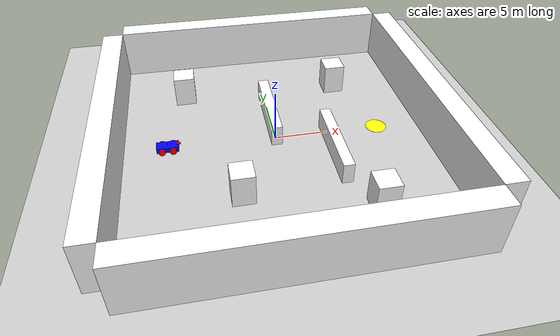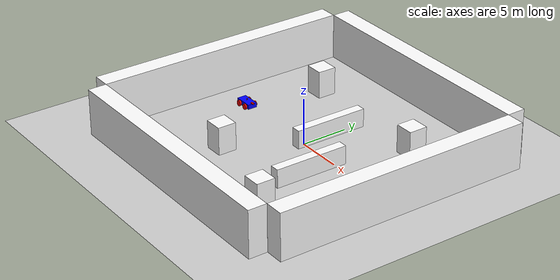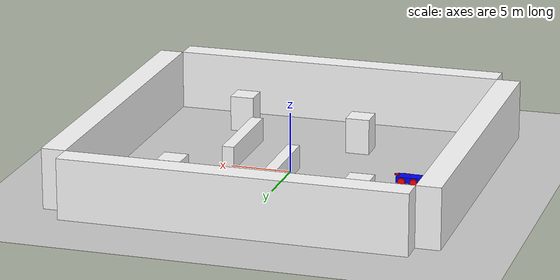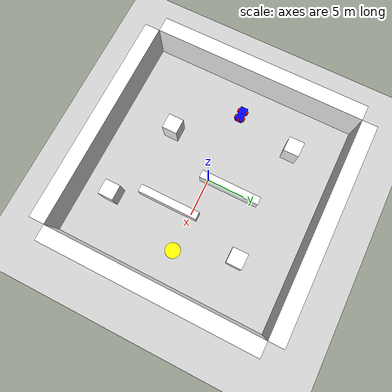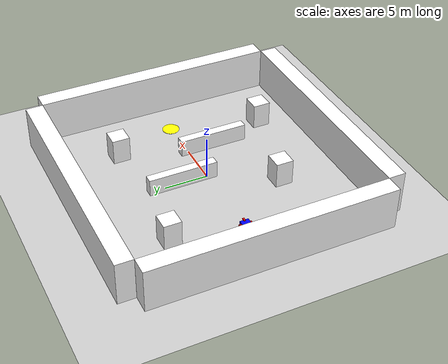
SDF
<?xml version="1.0"?>
<sdf version="1.9">
    <world name="my_car_world">
        <physics name="1ms" type="ignored">
            <max_step_size>0.004</max_step_size>
            <real_time_factor>1.0</real_time_factor>
        </physics>
       <plugin
            filename="ignition-gazebo-sensors-system"
            name="ignition::gazebo::v6::systems::Sensors">
        </plugin>
        <plugin
            filename="ignition-gazebo-physics-system"
            name="ignition::gazebo::v6::systems::Physics">
        </plugin>
        <plugin
            filename="ignition-gazebo-user-commands-system"
            name="ignition::gazebo::v6::systems::UserCommands">
        </plugin>
        <plugin
            filename="ignition-gazebo-scene-broadcaster-system"
            name="ignition::gazebo::v6::systems::SceneBroadcaster">
        </plugin>
        <plugin
            filename="ignition-gazebo-imu-system"
            name="ignition::gazebo::v6::systems::Imu">
        </plugin>
        <!-- Contact System 추가 (충돌 감지 필수) -->
        <plugin
            filename="ignition-gazebo-contact-system"
            name="ignition::gazebo::v6::systems::Contact">
        </plugin>
        <!-- 보상함수에서 차와 실제 목표지점간 거리가 얼마나 가까운지를 사용해야함. 기존에 car.sdf에 이 코드를 구현했었는데, 해당 방식은 car기준으로 좌표들을 보내줬었음 -->
        <!--하지만 내가 필요한 건 world기준 좌표이기 때문에 여기 다시 작성, child_frame_id를 car로 했을떄 정상적으로 출력되는 걸 확인.-->
        <plugin
            filename="ignition-gazebo-pose-publisher-system"
            name="ignition::gazebo::v6::systems::PosePublisher">
            <publish_link_pose>false</publish_link_pose>
            <publish_sensor_pose>false</publish_sensor_pose>
            <publish_collision_pose>false</publish_collision_pose>
            <publish_visual_pose>false</publish_visual_pose>
            <publish_nested_models>true</publish_nested_models>
            <publish_model_pose>true</publish_model_pose>
            <use_pose_vector_msg>true</use_pose_vector_msg>
            <static_publisher>true</static_publisher>
            <static_update_frequency>10</static_update_frequency>
        </plugin>
        <!-- LIDAR 센서를 위해 필요-->

        <light type="directional" name="sun">
            <cast_shadows>true</cast_shadows>
            <pose>0 0 10 0 0 0</pose>
            <diffuse>0.8 0.8 0.8 1</diffuse>
            <specular>0.2 0.2 0.2 1</specular>
            <attenuation>
                <range>1000</range>
                <constant>0.9</constant>
                <linear>0.01</linear>
                <quadratic>0.001</quadratic>
            </attenuation>
            <direction>-0.5 0.1 -0.9</direction>
        </light>

        <include>
            <uri>model://ground_plane</uri>
            <name>ground_plane</name>
            <pose>0 0 0 0 0 0</pose>
        </include>
        <include>
            <uri>model://car</uri>
            <name>car</name>
            <pose>-10 0 0 0 0 0</pose>
        </include>

        <!--car가
        map 밖으로 나가지 못하게 벽을 설치할거임-->
        <include>
            <uri>model://map_wall</uri>
            <name>north_wall</name>
            <pose>15 0 2.5 0 0 0</pose>
        </include>
        <include>
            <uri>model://map_wall</uri>
            <name>south_wall</name>
            <pose>-15 0 2.5 0 0 0</pose>
        </include>
        <include>
            <uri>model://map_wall</uri>
            <name>east_wall</name>
            <pose>0 15 2.5 0 0 1.5707</pose>
        </include>
        <include>
            <uri>model://map_wall</uri>
            <name>west_wall</name>
            <pose>0 -15 2.5 0 0 1.5707</pose>
        </include>

        <!-- 경로를 방해할 장애물들 설치.-->
        <!--정육면체형
        장애물 배치-->

        <include>
            <uri>model://box</uri>
            <name>box1</name>
            <pose>7.5 7.5 1.5 0 0 0</pose>
        </include>
        <include>
            <uri>model://box</uri>
            <name>box2</name>
            <pose>7 -10 1.5 0 0 0</pose>
        </include>

        <include>
            <uri>model://box</uri>
            <name>box4</name>
            <pose>-4 -7 1.5 0 0 0</pose>
        </include>
        <include>
            <uri>model://box</uri>
            <name>box5</name>
            <pose>-8 8 1.5 0 0 0</pose>
        </include>

        <!-- 장애물 벽 설치-->
        <include>
            <uri>model://wall</uri>
            <name>wall1</name>
            <pose>5 -3 1 0 0 0</pose>
        </include>
        <include>
            <uri>model://wall</uri>
            <name>wall2</name>
            <pose>0 3 1 0 0 0</pose>
        </include>

        <!-- 목표 지점 goal 설정-->
        <include>
            <uri>model://goal</uri>
            <name>goal</name>
            <pose>10 0 0 0 0 0</pose>
        </include>
    </world>
</sdf>

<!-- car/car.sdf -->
<sdf version="1.9">
    <model name='car' canonical_link='chassis::chassis_link'>
        <include>
            <uri>model://chassis</uri>
            <name>chassis</name>
            <pose>0 0 0.4 0 0 0</pose>
        </include>
        <pose>0 0 0 0 0 0</pose>

        <frame name="lidar_frame" attached_to='chassis::chassis_link'>
            <pose>1.05 0 0.5 0 0 0</pose>
        </frame>

        <include>
            <uri>model://tire</uri>
            <name>left_front_wheel</name>
            <pose>0.5 0.6 0.3 -1.5707 0 0</pose>
        </include>
        <include>
            <uri>model://tire</uri>
            <name>right_front_wheel</name>
            <pose>0.5 -0.6 0.3 -1.5707 0 0</pose>
        </include>
        <include>
            <uri>model://tire</uri>
            <name>left_rear_wheel</name>
            <pose>-0.5 0.6 0.3 -1.5707 0 0</pose>
        </include>
        <include>
            <uri>model://tire</uri>
            <name>right_rear_wheel</name>
            <pose>-0.5 -0.6 0.3 -1.5707 0 0</pose>
        </include>

        <include>
            <uri>model://knuckle</uri>
            <name>left_steering_knuckle</name>
            <pose>0.5 0.6 0.3 0 0 0</pose>
        </include>

        <joint name='left_steering_joint' type='revolute'>
            <parent>chassis::chassis_link</parent>
            <child>left_steering_knuckle::knuckle_link</child>
            <axis>
                <xyz>0 0 1</xyz>
                <limit>
                    <lower>-0.6</lower>
                    <upper>0.6</upper>
                    <effort>1000000</effort>
                </limit>
            </axis>
        </joint>

        <joint name='left_front_wheel_joint' type='revolute'>
            <pose relative_to='left_front_wheel' />
            <parent>left_steering_knuckle::knuckle_link</parent>
            <child>left_front_wheel::tire_link</child>
            <axis>
                <xyz expressed_in='__model__'>0 1 0</xyz>
                <limit>
                    <lower>-1.79769e+308</lower>
                    <upper>1.79769e+308</upper>
                </limit>
            </axis>
        </joint>

        <include>
            <uri>model://knuckle</uri>
            <name>right_steering_knuckle</name>
            <pose>0.5 -0.6 0.3 0 0 0</pose>
        </include>

        <joint name='right_steering_joint' type='revolute'>
            <parent>chassis::chassis_link</parent>
            <child>right_steering_knuckle::knuckle_link</child>
            <axis>
                <xyz>0 0 1</xyz>
                <limit>
                    <lower>-0.6</lower>
                    <upper>0.6</upper>
                    <effort>1000000</effort>
                </limit>
            </axis>
        </joint>

        <joint name='right_front_wheel_joint' type='revolute'>
            <pose relative_to='right_front_wheel' />
            <parent>right_steering_knuckle::knuckle_link</parent>
            <child>right_front_wheel::tire_link</child>
            <axis>
                <xyz expressed_in='__model__'>0 1 0</xyz>
                <limit>
                    <lower>-1.79769e+308</lower>
                    <upper>1.79769e+308</upper>
                </limit>
            </axis>
        </joint>

        <joint name='left_rear_wheel_joint' type='revolute'>
            <pose relative_to='left_rear_wheel' />
            <parent>chassis::chassis_link</parent>
            <child>left_rear_wheel::tire_link</child>
            <axis>
                <xyz expressed_in='__model__'>0 1 0</xyz>
                <limit>
                    <lower>-1.79769e+308</lower>
                    <upper>1.79769e+308</upper>
                </limit>
            </axis>
        </joint>

        <joint name='right_rear_wheel_joint' type='revolute'>
            <pose relative_to='right_rear_wheel' />
            <parent>chassis::chassis_link</parent>
            <child>right_rear_wheel::tire_link</child>
            <axis>
                <xyz expressed_in='__model__'>0 1 0</xyz>
                <limit>
                    <lower>-1.79769e+308</lower>
                    <upper>1.79769e+308</upper>
                </limit>
            </axis>
        </joint>
        <!--공식적으로 제공되는 플러그인을 찾아서 구현하였음-->
        <plugin
            filename="ignition-gazebo-ackermann-steering-system"
            name="ignition::gazebo::v6::systems::AckermannSteering">
            <topic>/cmd_vel</topic>
            <left_steering_joint>left_steering_joint</left_steering_joint>
            <right_steering_joint>right_steering_joint</right_steering_joint>
            <left_joint>left_rear_wheel_joint</left_joint>
            <right_joint>right_rear_wheel_joint</right_joint>
            <wheel_base>1.0</wheel_base>
            <wheel_separation>1.2</wheel_separation>
            <wheel_radius>0.3</wheel_radius>
            <odom_topic>/model/car/odometry</odom_topic>
            <tf_topic>/model/car/tf</tf_topic>
            <frame_id>odom</frame_id>
            <child_frame_id>chassis::chassis_link</child_frame_id>
            <odom_publish_frequency>30</odom_publish_frequency>
        </plugin>
        <!--충돌 방지를 위해서 contact sensor를 추가하였음.-->
        <plugin filename="libignition-gazebo-contact-system.so"
                name="ignition::gazebo::systems::Contact">
        </plugin>
        <!--자동차를 키보드로 움직여보기 위한 코드. 튜토리얼 중 추가하였음.-->
        <plugin filename="ignition-gazebo-triggered-publisher-system"
            name="ignition::gazebo::v6::systems::TriggeredPublisher">
            <input type="ignition.msgs.Int32" topic="/keyboard/keypress">
                <match field="data">16777235</match>
            </input>
            <output type="ignition.msgs.Twist" topic="/cmd_vel">
                linear: {x: 0.5}, angular: {z: 0.0}
            </output>
        </plugin>

        <plugin filename="ignition-gazebo-triggered-publisher-system"
            name="ignition::gazebo::v6::systems::TriggeredPublisher">
            <input type="ignition.msgs.Int32" topic="/keyboard/keypress">
                <match field="data">16777237</match>
            </input>
            <output type="ignition.msgs.Twist" topic="/cmd_vel">
                linear: {x: -0.5}, angular: {z: 0.0}
            </output>
        </plugin>

        <plugin filename="ignition-gazebo-triggered-publisher-system"
            name="ignition::gazebo::v6::systems::TriggeredPublisher">
            <input type="ignition.msgs.Int32" topic="/keyboard/keypress">
                <match field="data">16777234</match>
            </input>
            <output type="ignition.msgs.Twist" topic="/cmd_vel">
                linear: {x: 0.2}, angular: {z: 0.5}
            </output>
        </plugin>

        <plugin filename="ignition-gazebo-triggered-publisher-system"
            name="ignition::gazebo::v6::systems::TriggeredPublisher">
            <input type="ignition.msgs.Int32" topic="/keyboard/keypress">
                <match field="data">16777236</match>
            </input>
            <output type="ignition.msgs.Twist" topic="/cmd_vel">
                linear: {x: 0.2}, angular: {z: -0.5}
            </output>
        </plugin>
        <!--ROS한테 내부 센서들이 자동차의 어디에 있는 지 알려주는 플러그인이라고 함. 이게 있어야 ROS에서 점을 찍을 수 있다고함.-->
        <plugin
            filename="ignition-gazebo-pose-publisher-system"
            name="ignition::gazebo::v6::systems::PosePublisher">
            <publish_link_pose>true</publish_link_pose>
            <publish_sensor_pose>true</publish_sensor_pose>
            <publish_collision_pose>false</publish_collision_pose>
            <publish_visual_pose>false</publish_visual_pose>
            <publish_nested_models>true</publish_nested_models>
            <publish_model_pose>true</publish_model_pose>
            <use_pose_vector_msg>true</use_pose_vector_msg>
            <static_publisher>true</static_publisher>
            <static_update_frequency>10</static_update_frequency>
        </plugin>
    </model>
</sdf>

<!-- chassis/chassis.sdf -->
<sdf version="1.9" xmlns:ignition="http://sdformat.org/schemas/ignition">
    <model name='chassis_model'>
        <link name='chassis_link'>

            <!-- 차체에 실질적인 IMU 센서 부착-->
            <sensor name="imu_sensor" type="imu">
                <always_on>1</always_on>
                <update_rate>10</update_rate>
                <visualize>true</visualize>
                <topic>imu</topic>
            </sensor>
            <!-- 차체에 실질적인 LIDAR 센서 부착-->
            <!-- mac m2 환경에서 호환성 문제 지속 발생-->
            <!-- lidar_frame의 위치 (car.sdf에서 1.05 0 0.5로 정의됨)를 chassis_link 기준으로 직접 설정 -->

            <!-- 라이다 센서와 차체 사이의 빈공간을 메꾸기 위한 링크 추가-->
            <visual name='lidar_empty_space_visual'>
                <pose>0 0 0.3 0 0 0</pose> <!--빈 공간의 좌표-->
                <geometry>
                    <cylinder> <!--같은 원통 모양으로 하되, 센서보다 반지름 조금 작게-->
                        <radius>0.03</radius>
                        <length>0.1</length>
                    </cylinder>
                </geometry>
                <material>
                    <ambient>0.2 0.2 0.2 1</ambient>
                    <diffuse>0.2 0.2 0.2 1</diffuse>
                </material>
            </visual>

            <collision name='lidar_empty_space_collision'>
                <pose>0 0 0.3 0 0 0</pose> <!--빈 공간의 좌표, 위와 동일-->
                <geometry>
                    <cylinder>
                        <radius>0.03</radius>
                        <length>0.1</length>
                    </cylinder>
                </geometry>
            </collision>

            <!-- 라이다 센서 위치를 시각적으로 표시하기 위한 visual 추가 -->
            <visual name='lidar_visual'>
                <pose>0 0 0.4 0 0 0</pose>
                <geometry>
                    <cylinder>
                        <radius>0.05</radius>
                        <length>0.1</length>
                    </cylinder>
                </geometry>
                <material>
                    <ambient>1.0 0.0 0.0 1</ambient>
                    <diffuse>1.0 0.0 0.0 1</diffuse>
                    <specular>1.0 0.0 0.0 1</specular>
                </material>
            </visual>
            <!--현실 세계를 생각하면 라이다 센서를 360도 돌릴려면 안에 있는 모터가 360도 돌아가면서 센서를 쏘는거라서 각 방향별로 시간차가 발생한다고함.-->
            <!--단순히 라이다 센서 태그 하나 넣고 각도를 360도 돌아라고 하면 현실 세계랑 조금 안맞는 것 같은 느낌이 있어서 상하좌우 각 방면에 카메라를 하나씩 두는 것도 고민을 했었는데 -->
            <!--일단은 완벽한 현실 재현보다는 시뮬레이션 환경에서 잘 돌아가는 강화학습 에이전트를 만드는게 우선이라고 생각해서 이렇게 진행했음.-->
            <!--update_rate를 5로 지정해둬서 0.2초에 한번씩 시뮬레이션 세상에서 멈추고 뽑아주는 거라는데 일단은 넘어감-->
            <sensor name='gpu_lidar' type='gpu_lidar'>
                <pose>0 0 0.4 0 0 0</pose>
                <topic>lidar</topic>
                <update_rate>10</update_rate>
                <ignition:frame_id>lidar_frame</ignition:frame_id> <!--ROS에서 쓰기 편하게 짧은 이름으로 해주는 것이라고 함-->
                <ray>
                    <scan>
                        <horizontal>
                            <samples>360</samples>
                            <resolution>1</resolution>
                            <min_angle>-3.141592</min_angle>
                            <max_angle>3.141592</max_angle>
                        </horizontal>
                        <!-- 수직 방향으로도 스캔이 가능하지만 이번 과제에서는 거리를 측정해서 센서값 기반으로 장애물을 회피하는거지, 드론처럼 z축 이동하는 것이 아니기 때문에 최소화로 작성하고 사용은 안 할 것임.-->
                        <vertical>
                            <samples>1</samples>
                            <resolution>0.01</resolution>
                            <min_angle>0</min_angle>
                            <max_angle>0</max_angle>
                        </vertical>
                    </scan>
                    <range>
                        <min>1.5</min>
                        <max>10.0</max>
                        <resolution>0.01</resolution>
                    </range>
                </ray>
                <always_on>1</always_on>
                <visualize>true</visualize>
            </sensor>
            <!--SSH 터널링으로 넘어오기에 데이터가 크다는 오류가 계속 나와서 320*240을 160*120으로 줄이고 주기도 30->10으로 낮춤-->
            <!--카메라의 x좌표는 처음에 복잡하게 생각하기 싫어서 차체의 끝 좌표에 설치했는데 돌출형인게 카메라가 정면을 주시할 때 더 나은거 같아서 그대로 둠.-->
            <sensor name="camera" type="camera">
                <pose>1 0 0.3 0 0 0</pose>
                <camera>
                    <horizontal_fov>1.047</horizontal_fov>
                    <image>
                        <width>160</width>
                        <height>120</height>
                    </image>
                    <clip>
                        <near>0.1</near>
                        <far>100</far>
                    </clip>
                </camera>
                <always_on>1</always_on>
                <update_rate>10</update_rate>
                <visualize>true</visualize>
                <topic>camera</topic>
                <ignition:frame_id>camera_link</ignition:frame_id>
            </sensor>

            <visual name='rgb_camera'>
                <pose>1 0 0.3 0 0 0</pose>
                <geometry>
                    <box>
                        <size>0.4 0.2 0.1</size>
                    </box>
                </geometry>
                <material>
                    <ambient>1.0 0.0 0.0 1</ambient>
                    <diffuse>1.0 0.0 0.0 1</diffuse>
                    <specular>1.0 0.0 0.0 1</specular>
                </material>
            </visual>
            <pose>0 0 0 0 0 0</pose>
            <!-- 공식 문서에 따르면 관성이라고 함.-->
            <inertial> <!--inertial
                properties of the link mass, inertia matix-->
                <mass>1.14395</mass>
                <inertia>
                    <ixx>0.095329</ixx>
                    <ixy>0</ixy>
                    <ixz>0</ixz>
                    <iyy>0.381317</iyy>
                    <iyz>0</iyz>
                    <izz>0.476646</izz>
                </inertia>
            </inertial>
            <visual name='visual'>
                <!-- 시각적으로 어떻게 보이는 지를 정의하는 부분 -->
                <geometry>
                    <!--직육면체라고함.-->
                    <box>
                        <size>2.0 1.0 0.5</size>
                    </box>
                </geometry>
                <!-- 정의한 link(여기서는 차체)의 색상을 정의하는 부분-->
                <material>
                    <ambient>0.0 0.0 1.0 1</ambient>
                    <diffuse>0.0 0.0 1.0 1</diffuse>
                    <specular>0.0 0.0 1.0 1</specular>
                </material>
            </visual>
            <!--충돌체를
            정의하는 부분. 시각적인것과 다르게 정의할 수도 있다고는 하는데. 나는 일단 똑같게.-->
            <collision name='chassis_collision'>
                <geometry>
                    <box>
                        <size>2.0 1.0 0.5</size>
                    </box>
                </geometry>
                <surface>
                    <contact>
                        <collide_bitmask>0x01</collide_bitmask>
                    </contact>
                    <friction>
                        <ode>
                            <mu>1.0</mu>
                            <mu2>1.0</mu2>
                        </ode>
                    </friction>
                </surface>
            </collision>
            <!-- 차체에 contact sensor를 부착-->

            <!-- 차체 contact sensor -->
            <sensor name="contact_sensor_chassis" type="contact">
                <contact>
                    <collision>chassis_collision</collision>
                </contact>
                <always_on>1</always_on>
                <update_rate>10</update_rate>
                <topic>contact_chassis</topic>
            </sensor>

            <!-- 카메라 충돌체 추가 (차체보다 튀어나와 있어서 필수) -->
            <collision name='camera_collision'>
                <pose>1 0 0.3 0 0 0</pose>
                <geometry>
                    <box>
                        <size>0.4 0.2 0.1</size>
                    </box>
                </geometry>
                <surface>
                    <contact>
                        <collide_bitmask>0x01</collide_bitmask>
                    </contact>
                    <friction>
                        <ode>
                            <mu>1.0</mu>
                            <mu2>1.0</mu2>
                        </ode>
                    </friction>
                </surface>
            </collision>

            <!-- 카메라 contact sensor -->
            <sensor name="contact_sensor_camera" type="contact">
                <contact>
                    <collision>camera_collision</collision>
                </contact>
                <always_on>1</always_on>
                <update_rate>10</update_rate>
                <topic>contact_camera</topic>
            </sensor>
        </link>
    </model>
</sdf>

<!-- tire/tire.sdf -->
<sdf version="1.9">
    <model name='tire_model'>
        <link name='tire_link'>
            <pose> 0 0 0 0 0 0</pose>
            <inertial><!--튜토리얼에서 그대로 가져올떄는 반지름 0.4 기준 관성이었기 때문에 수정함-->
                    <mass>1</mass>
                    <inertia>
                        <ixx>0.025833</ixx>
                        <ixy>0</ixy>
                        <ixz>0</ixz>
                        <iyy>0.025833</iyy>
                        <iyz>0</iyz>
                        <izz>0.045</izz>
                    </inertia>
            </inertial>

            <visual name='visual'>
                <geometry>
                    <cylinder> <!--라이다 센서에 걸려서 반지름 줄임. car.sdf파일에서 축도 변경해서 내릴 생각-->
                        <radius>0.3</radius>
                        <length>0.2</length>
                    </cylinder>
                </geometry>
                <material>
                    <ambient>1.0 0.0 0.0 1</ambient>
                    <diffuse>1.0 0.0 0.0 1</diffuse>
                    <specular>1.0 0.0 0.0 1</specular>
                </material>
            </visual>
            <collision name='tire_collision'>
                <geometry>
                    <cylinder>
                        <radius>0.3</radius>
                        <length>0.2</length>
                    </cylinder>
                </geometry>
                <surface>
                    <contact>
                        <collide_bitmask>0x01</collide_bitmask>
                    </contact>
                    <friction>
                        <ode>
                            <mu>1.0</mu>
                            <mu2>1.0</mu2>
                        </ode>
                    </friction>
                </surface>
            </collision>
            <!-- 타이어에도 contact sensor를 부착-->
            <!-- 한 파일에 넣으니까 다른 모든 타이어에 적용됨-->

            <!-- 타이어 contact sensor -->
            <sensor name="contact_sensor_tire" type="contact">
                <contact>
                    <collision>tire_collision</collision>
                </contact>
                <always_on>1</always_on>
                <update_rate>10</update_rate>
                <topic>contact_tire</topic>
            </sensor>
        </link>
    </model>
</sdf>

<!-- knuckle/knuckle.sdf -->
<sdf version="1.9">
    <model name='knuckle_model'>
        <link name='knuckle_link'>
            <pose>0 0 0 0 0 0</pose>
            <inertial>
                <mass>0.1</mass>
                <inertia>
                    <ixx>0.001</ixx>
                    <ixy>0</ixy>
                    <ixz>0</ixz>
                    <iyy>0.001</iyy>
                    <iyz>0</iyz>
                    <izz>0.001</izz>
                </inertia>
            </inertial>
            <visual name='visual'>
                <geometry>
                    <box>
                        <size>0.1 0.1 0.1</size>
                    </box>
                </geometry>
            </visual>
        </link>
    </model>
</sdf>

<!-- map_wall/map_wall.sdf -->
<sdf version="1.9">
    <model name='map_wall'>
        <static>true</static>
        <pose>0 0 0 0 0 0</pose>
        <link name='map_wall'>
            <visual name='visual'>
                <geometry>
                    <box><size>2 28 5</size></box>
                </geometry>
                <material>
                    <diffuse>1.0 1.0 1.0 1.0</diffuse>
                    <specular>0.2 0.2 0.2 1.0</specular>
                    <pbr>
                        <metal>
                            <albedo_map>/home/david/ros2_car_ws/src/gazebo_car_sim_package/models/textures/map_wall_texture.png</albedo_map>
                        </metal>
                    </pbr>
                </material>
            </visual>
            <collision name='collision'>
                <geometry>
                    <box><size>2 28 5</size></box>
                </geometry>
                <surface>
                    <contact><collide_bitmask>0x01</collide_bitmask></contact>
                    <friction>
                        <ode><mu>1.0</mu><mu2>1.0</mu2></ode>
                    </friction>
                </surface>
            </collision>
        </link>
    </model>
</sdf>

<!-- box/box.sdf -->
<sdf version="1.9">
    <model name='box'>
        <static>true</static>
        <pose>0 0 0 0 0 0</pose>
        <link name='box'>
            <visual name='visual'>
                <geometry>
                    <box><size>2 2 3</size></box>
                </geometry>
                <material>
                    <diffuse>1.0 1.0 1.0 1.0</diffuse>
                    <specular>0.5 0.5 0.5 1.0</specular>
                    <pbr>
                        <metal>
                            <albedo_map>/home/david/ros2_car_ws/src/gazebo_car_sim_package/models/textures/box_texture.png</albedo_map>
                        </metal>
                    </pbr>
                </material>
            </visual>
            <collision name='collision'>
                <geometry>
                    <box><size>2 2 3</size></box>
                </geometry>
                <surface>
                    <contact><collide_bitmask>0x01</collide_bitmask></contact>
                    <friction>
                        <ode><mu>1.0</mu><mu2>1.0</mu2></ode>
                    </friction>
                </surface>
            </collision>
        </link>
    </model>
</sdf>

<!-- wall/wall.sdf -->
<sdf version="1.9">
    <model name='wall'>
        <static>true</static>
        <pose>5 0 0 0 0 0</pose><!--pose
            relative to the world-->
        <link name='wall'>
            <visual name='visual'>
                <geometry>
                    <box><size>1 8 2.0</size></box>
                </geometry>
                <material>
                    <diffuse>1.0 1.0 1.0 1.0</diffuse>
                    <specular>0.2 0.2 0.2 1.0</specular>
                    <pbr>
                        <metal>
                            <albedo_map>/home/david/ros2_car_ws/src/gazebo_car_sim_package/models/textures/wall_texture.png</albedo_map>
                        </metal>
                    </pbr>
                </material>
            </visual>
            <collision name='collision'>
                <geometry>
                    <box>
                        <size>1 8 2.0</size>
                    </box>
                </geometry>
                <surface>
                    <contact>
                        <collide_bitmask>0x01</collide_bitmask>
                    </contact>
                    <friction>
                        <ode>
                            <mu>1.0</mu>
                            <mu2>1.0</mu2>
                        </ode>
                    </friction>
                </surface>
            </collision>
        </link>
    </model>
</sdf>

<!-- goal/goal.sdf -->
<sdf version="1.9">
    <model name='goal'>
        <static>true</static>
        <link name='link'>
            <visual name='visual'>
                <geometry>
                    <cylinder>
                        <radius>1</radius>
                        <length>0.01</length>
                    </cylinder>
                </geometry>
                <material>
                    <ambient>1.0 1.0 0.0 1</ambient>
                    <diffuse>1.0 1.0 0.0 1</diffuse>
                    <specular>1.0 1.0 0.0 1</specular>
                </material>
            </visual>
        </link>
    </model>
</sdf>
